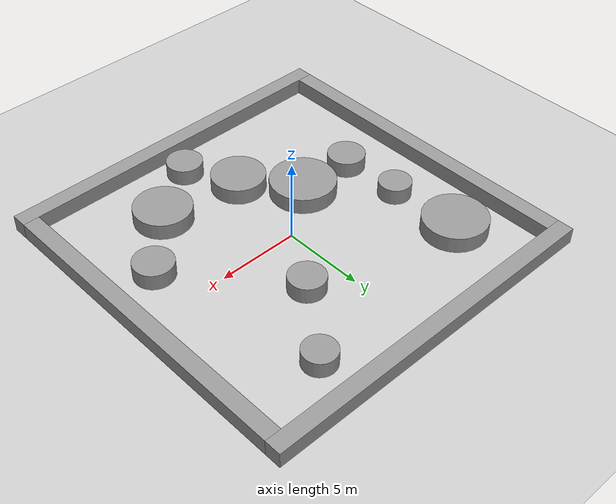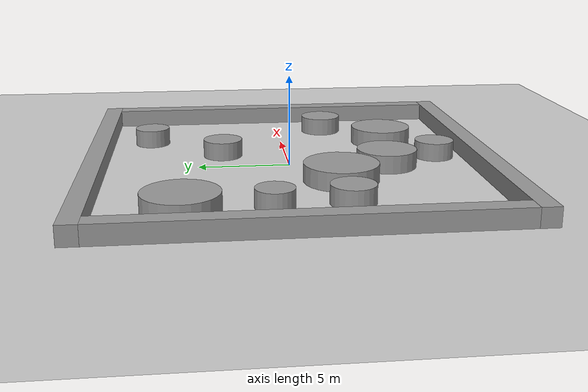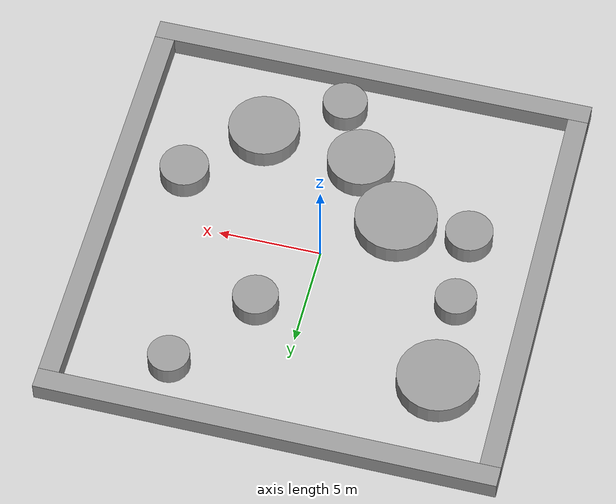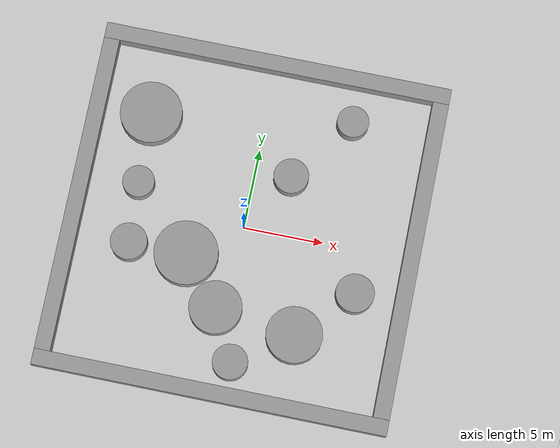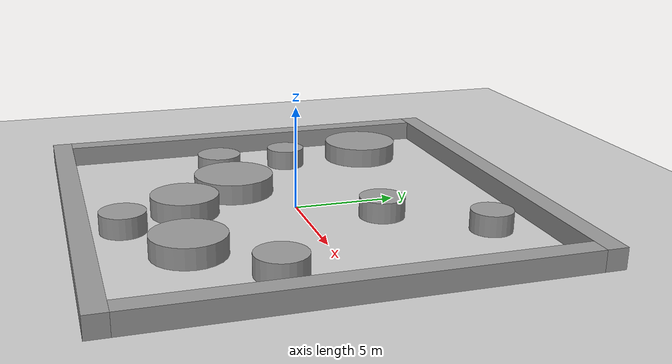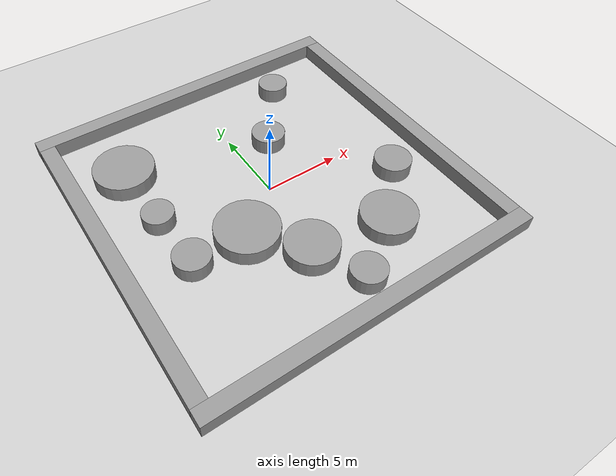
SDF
<?xml version="1.0" ?>
<sdf version="1.6">
  <world name="default">
    <include><uri>model://sun</uri></include>
    <include><uri>model://ground_plane</uri></include>

    <model name='wall_north'>
      <static>true</static>
      <pose>0 10.5 0.5 0 0 0</pose>
      <link name='link'><collision name='collision'><geometry><box><size>22.0 1.0 1.0</size></box></geometry></collision><visual name='visual'><geometry><box><size>22.0 1.0 1.0</size></box></geometry><material><script><uri>file://media/materials/scripts/gazebo.material</uri><name>Gazebo/Grey</name></script></material></visual></link>
    </model>
    <model name='wall_south'>
      <static>true</static>
      <pose>0 -10.5 0.5 0 0 0</pose>
      <link name='link'><collision name='collision'><geometry><box><size>22.0 1.0 1.0</size></box></geometry></collision><visual name='visual'><geometry><box><size>22.0 1.0 1.0</size></box></geometry><material><script><uri>file://media/materials/scripts/gazebo.material</uri><name>Gazebo/Grey</name></script></material></visual></link>
    </model>
    <model name='wall_east'>
      <static>true</static>
      <pose>10.5 0 0.5 0 0 0</pose>
      <link name='link'><collision name='collision'><geometry><box><size>1.0 20.0 1.0</size></box></geometry></collision><visual name='visual'><geometry><box><size>1.0 20.0 1.0</size></box></geometry><material><script><uri>file://media/materials/scripts/gazebo.material</uri><name>Gazebo/Grey</name></script></material></visual></link>
    </model>
    <model name='wall_west'>
      <static>true</static>
      <pose>-10.5 0 0.5 0 0 0</pose>
      <link name='link'><collision name='collision'><geometry><box><size>1.0 20.0 1.0</size></box></geometry></collision><visual name='visual'><geometry><box><size>1.0 20.0 1.0</size></box></geometry><material><script><uri>file://media/materials/scripts/gazebo.material</uri><name>Gazebo/Grey</name></script></material></visual></link>
    </model>
    <model name='obstacle_4'>
      <static>true</static>
      <pose>5.350000000000001 7.75 0.5 0 0 0</pose>
      <link name='link'>
        <visual name='visual'>
          <geometry><cylinder><radius>1.0</radius><length>1.0</length></cylinder></geometry>
          <material><script><uri>file://media/materials/scripts/gazebo.material</uri><name>Gazebo/Grey</name></script></material>
        </visual>
        <collision name='collision'>
          <geometry><cylinder><radius>1.0</radius><length>1.0</length></cylinder></geometry>
        </collision>
      </link>
    </model>
    <model name='obstacle_5'>
      <static>true</static>
      <pose>2.25 3.6000000000000014 0.5 0 0 0</pose>
      <link name='link'>
        <visual name='visual'>
          <geometry><cylinder><radius>1.1</radius><length>1.0</length></cylinder></geometry>
          <material><script><uri>file://media/materials/scripts/gazebo.material</uri><name>Gazebo/Grey</name></script></material>
        </visual>
        <collision name='collision'>
          <geometry><cylinder><radius>1.1</radius><length>1.0</length></cylinder></geometry>
        </collision>
      </link>
    </model>
    <model name='obstacle_6'>
      <static>true</static>
      <pose>-6.75 -2.4000000000000004 0.5 0 0 0</pose>
      <link name='link'>
        <visual name='visual'>
          <geometry><cylinder><radius>1.1500000000000001</radius><length>1.0</length></cylinder></geometry>
          <material><script><uri>file://media/materials/scripts/gazebo.material</uri><name>Gazebo/Grey</name></script></material>
        </visual>
        <collision name='collision'>
          <geometry><cylinder><radius>1.1500000000000001</radius><length>1.0</length></cylinder></geometry>
        </collision>
      </link>
    </model>
    <model name='obstacle_7'>
      <static>true</static>
      <pose>0.8500000000000014 -8.45 0.5 0 0 0</pose>
      <link name='link'>
        <visual name='visual'>
          <geometry><cylinder><radius>1.1</radius><length>1.0</length></cylinder></geometry>
          <material><script><uri>file://media/materials/scripts/gazebo.material</uri><name>Gazebo/Grey</name></script></material>
        </visual>
        <collision name='collision'>
          <geometry><cylinder><radius>1.1</radius><length>1.0</length></cylinder></geometry>
        </collision>
      </link>
    </model>
    <model name='obstacle_8'>
      <static>true</static>
      <pose>-3.1499999999999995 -2.4000000000000004 0.5 0 0 0</pose>
      <link name='link'>
        <visual name='visual'>
          <geometry><cylinder><radius>2.0</radius><length>1.0</length></cylinder></geometry>
          <material><script><uri>file://media/materials/scripts/gazebo.material</uri><name>Gazebo/Grey</name></script></material>
        </visual>
        <collision name='collision'>
          <geometry><cylinder><radius>2.0</radius><length>1.0</length></cylinder></geometry>
        </collision>
      </link>
    </model>
    <model name='obstacle_9'>
      <static>true</static>
      <pose>7.5 -2.799999999999999 0.5 0 0 0</pose>
      <link name='link'>
        <visual name='visual'>
          <geometry><cylinder><radius>1.2000000000000002</radius><length>1.0</length></cylinder></geometry>
          <material><script><uri>file://media/materials/scripts/gazebo.material</uri><name>Gazebo/Grey</name></script></material>
        </visual>
        <collision name='collision'>
          <geometry><cylinder><radius>1.2000000000000002</radius><length>1.0</length></cylinder></geometry>
        </collision>
      </link>
    </model>
    <model name='obstacle_10'>
      <static>true</static>
      <pose>-7.1 5.850000000000001 0.5 0 0 0</pose>
      <link name='link'>
        <visual name='visual'>
          <geometry><cylinder><radius>1.9500000000000002</radius><length>1.0</length></cylinder></geometry>
          <material><script><uri>file://media/materials/scripts/gazebo.material</uri><name>Gazebo/Grey</name></script></material>
        </visual>
        <collision name='collision'>
          <geometry><cylinder><radius>1.9500000000000002</radius><length>1.0</length></cylinder></geometry>
        </collision>
      </link>
    </model>
    <model name='obstacle_11'>
      <static>true</static>
      <pose>-0.6999999999999993 -5.35 0.5 0 0 0</pose>
      <link name='link'>
        <visual name='visual'>
          <geometry><cylinder><radius>1.6500000000000001</radius><length>1.0</length></cylinder></geometry>
          <material><script><uri>file://media/materials/scripts/gazebo.material</uri><name>Gazebo/Grey</name></script></material>
        </visual>
        <collision name='collision'>
          <geometry><cylinder><radius>1.6500000000000001</radius><length>1.0</length></cylinder></geometry>
        </collision>
      </link>
    </model>
    <model name='obstacle_12'>
      <static>true</static>
      <pose>-6.95 1.4000000000000004 0.5 0 0 0</pose>
      <link name='link'>
        <visual name='visual'>
          <geometry><cylinder><radius>1.0</radius><length>1.0</length></cylinder></geometry>
          <material><script><uri>file://media/materials/scripts/gazebo.material</uri><name>Gazebo/Grey</name></script></material>
        </visual>
        <collision name='collision'>
          <geometry><cylinder><radius>1.0</radius><length>1.0</length></cylinder></geometry>
        </collision>
      </link>
    </model>
    <model name='obstacle_13'>
      <static>true</static>
      <pose>4.350000000000001 -6.05 0.5 0 0 0</pose>
      <link name='link'>
        <visual name='visual'>
          <geometry><cylinder><radius>1.75</radius><length>1.0</length></cylinder></geometry>
          <material><script><uri>file://media/materials/scripts/gazebo.material</uri><name>Gazebo/Grey</name></script></material>
        </visual>
        <collision name='collision'>
          <geometry><cylinder><radius>1.75</radius><length>1.0</length></cylinder></geometry>
        </collision>
      </link>
    </model>
  </world>
</sdf>
